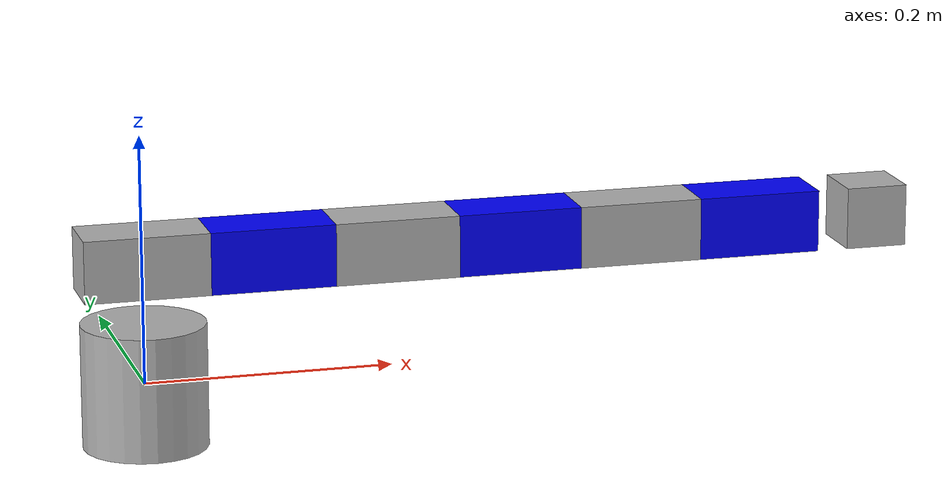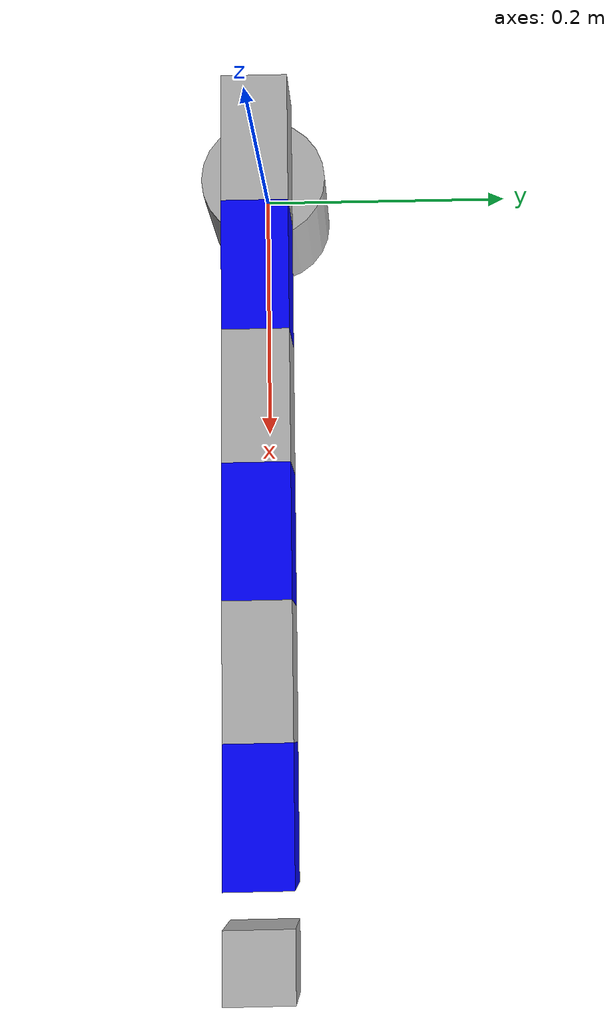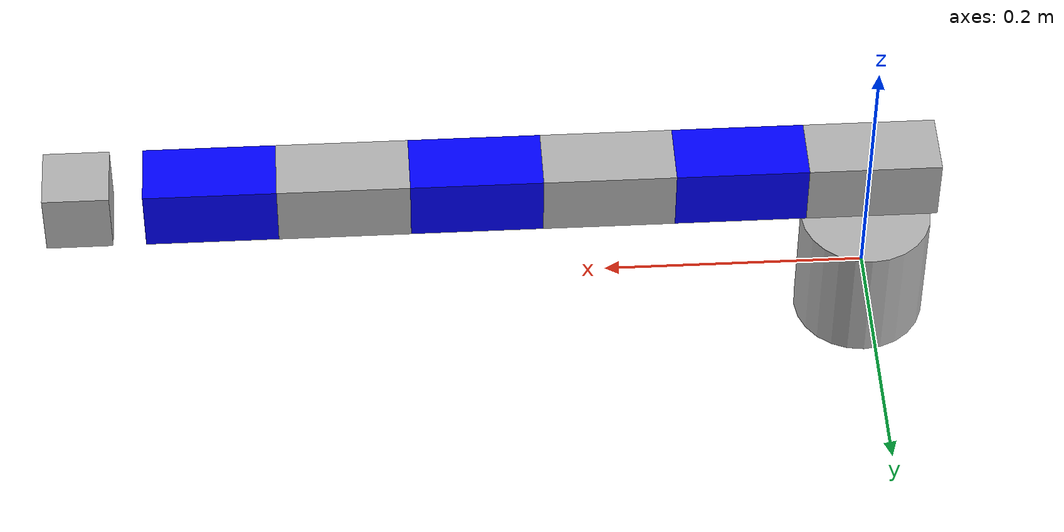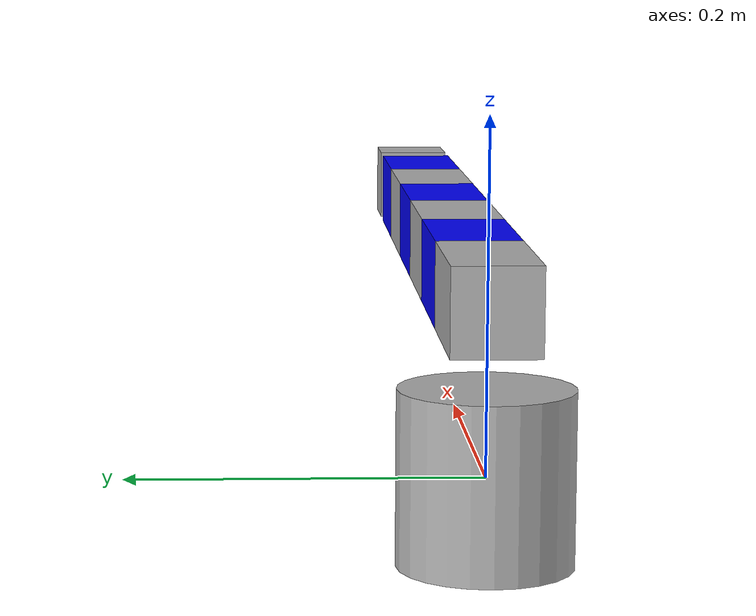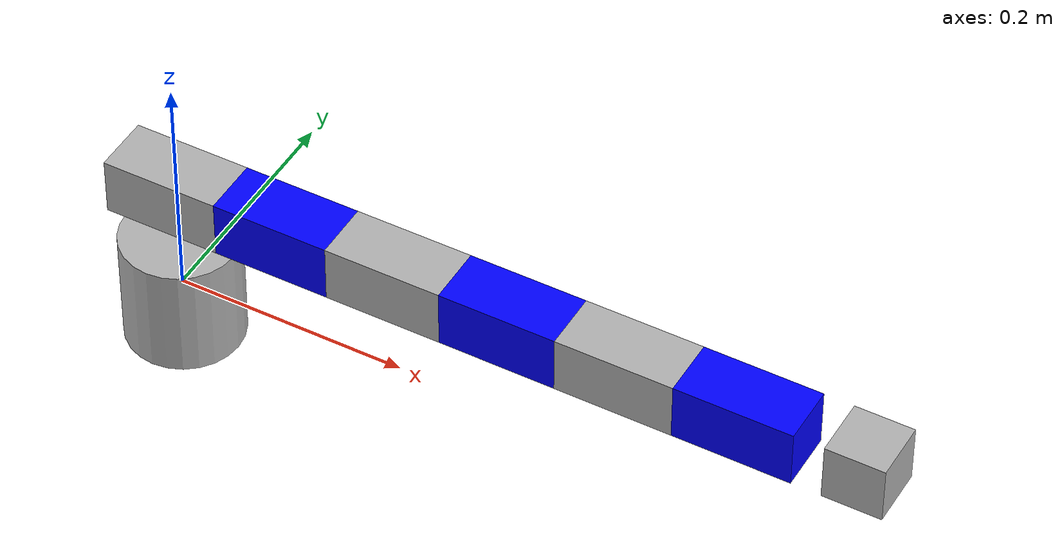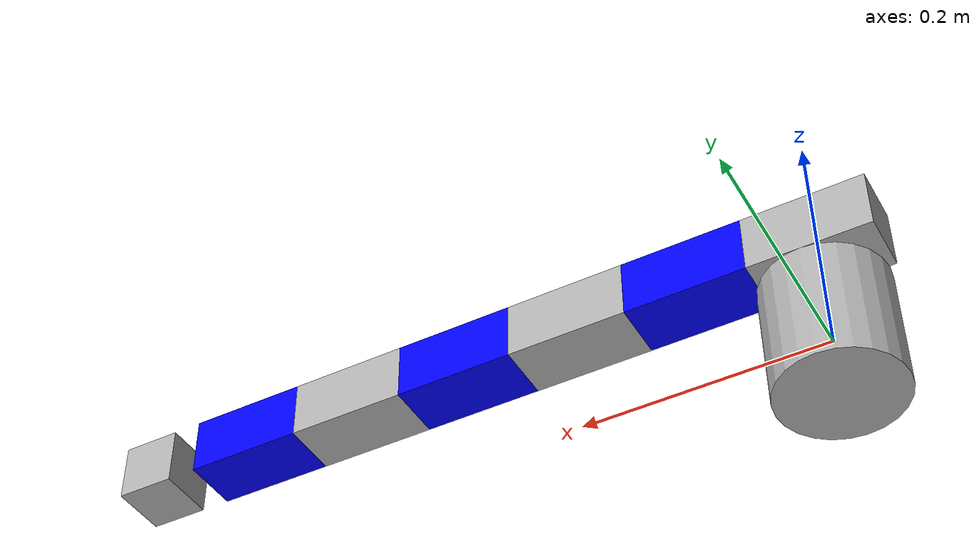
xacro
<?xml version="1.0"?>
<robot name="pegasus_arm" xmlns:xacro="http://www.ros.org/wiki/xacro">

  <!-- Materials -->
  <material name="silver">
    <color rgba="0.7 0.7 0.7 1.0"/>
  </material>
  <material name="blue">
    <color rgba="0.0 0.0 1.0 1.0"/>
  </material>

  <!-- Links -->
  <link name="world_link"/>
  <joint name="world_to_base" type="fixed">
    <parent link="world_link"/>
    <child link="base_link"/>
    <origin xyz="0 0 0" rpy="0 0 0"/>
  </joint>

  <link name="base_link">
    <visual>
      <geometry>
        <cylinder length="0.1" radius="0.05"/>
      </geometry>
      <material name="silver"/>
    </visual>
    <collision>
      <geometry>
        <cylinder length="0.1" radius="0.05"/>
      </geometry>
    </collision>
    <inertial>
      <origin xyz="0 0 0" rpy="0 0 0"/>
      <mass value="1.0"/>
      <inertia ixx="0.01" ixy="0.0" ixz="0.0" iyy="0.01" iyz="0.0" izz="0.01"/>
    </inertial>
  </link>

  <link name="link1">
    <visual>
      <geometry>
        <box size="0.1 0.05 0.05"/>
      </geometry>
      <material name="silver"/>
    </visual>
    <collision>
      <geometry>
        <box size="0.1 0.05 0.05"/>
      </geometry>
    </collision>
    <inertial>
      <origin xyz="0 0 0" rpy="0 0 0"/>
      <mass value="0.5"/>
      <inertia ixx="0.005" ixy="0.0" ixz="0.0" iyy="0.005" iyz="0.0" izz="0.005"/>
    </inertial>
  </link>

  <link name="link2">
    <visual>
      <geometry>
        <box size="0.1 0.05 0.05"/>
      </geometry>
      <material name="blue"/>
    </visual>
    <collision>
      <geometry>
        <box size="0.1 0.05 0.05"/>
      </geometry>
    </collision>
    <inertial>
      <origin xyz="0 0 0" rpy="0 0 0"/>
      <mass value="0.5"/>
      <inertia ixx="0.005" ixy="0.0" ixz="0.0" iyy="0.005" iyz="0.0" izz="0.005"/>
    </inertial>
  </link>

  <link name="link3">
    <visual>
      <geometry>
        <box size="0.1 0.05 0.05"/>
      </geometry>
      <material name="silver"/>
    </visual>
    <collision>
      <geometry>
        <box size="0.1 0.05 0.05"/>
      </geometry>
    </collision>
    <inertial>
      <origin xyz="0 0 0" rpy="0 0 0"/>
      <mass value="0.5"/>
      <inertia ixx="0.005" ixy="0.0" ixz="0.0" iyy="0.005" iyz="0.0" izz="0.005"/>
    </inertial>
  </link>

  <link name="link4">
    <visual>
      <geometry>
        <box size="0.1 0.05 0.05"/>
      </geometry>
      <material name="blue"/>
    </visual>
    <collision>
      <geometry>
        <box size="0.1 0.05 0.05"/>
      </geometry>
    </collision>
    <inertial>
      <origin xyz="0 0 0" rpy="0 0 0"/>
      <mass value="0.5"/>
      <inertia ixx="0.005" ixy="0.0" ixz="0.0" iyy="0.005" iyz="0.0" izz="0.005"/>
    </inertial>
  </link>

  <link name="link5">
    <visual>
      <geometry>
        <box size="0.1 0.05 0.05"/>
      </geometry>
      <material name="silver"/>
    </visual>
    <collision>
      <geometry>
        <box size="0.1 0.05 0.05"/>
      </geometry>
    </collision>
    <inertial>
      <origin xyz="0 0 0" rpy="0 0 0"/>
      <mass value="0.5"/>
      <inertia ixx="0.005" ixy="0.0" ixz="0.0" iyy="0.005" iyz="0.0" izz="0.005"/>
    </inertial>
  </link>

  <link name="link6">
    <visual>
      <geometry>
        <box size="0.1 0.05 0.05"/>
      </geometry>
      <material name="blue"/>
    </visual>
    <collision>
      <geometry>
        <box size="0.1 0.05 0.05"/>
      </geometry>
    </collision>
    <inertial>
      <origin xyz="0 0 0" rpy="0 0 0"/>
      <mass value="0.5"/>
      <inertia ixx="0.005" ixy="0.0" ixz="0.0" iyy="0.005" iyz="0.0" izz="0.005"/>
    </inertial>
  </link>

  <link name="end_effector_link">
    <visual>
      <geometry>
        <box size="0.05 0.05 0.05"/>
      </geometry>
      <material name="silver"/>
    </visual>
    <collision>
      <geometry>
        <box size="0.05 0.05 0.05"/>
      </geometry>
    </collision>
    <inertial>
      <origin xyz="0 0 0" rpy="0 0 0"/>
      <mass value="0.2"/>
      <inertia ixx="0.002" ixy="0.0" ixz="0.0" iyy="0.002" iyz="0.0" izz="0.002"/>
    </inertial>
  </link>

  <!-- Joints -->
  <joint name="joint_base_link_link1" type="revolute">
    <parent link="base_link"/>
    <child link="link1"/>
    <origin xyz="0 0 0.1" rpy="0 0 0"/>
    <axis xyz="0 0 1"/>
    <limit lower="-1.57" upper="1.57" effort="10" velocity="1"/>
    <dynamics damping="0.1" friction="0"/>
  </joint>

  <joint name="joint_link1_link2" type="revolute">
    <parent link="link1"/>
    <child link="link2"/>
    <origin xyz="0.1 0 0" rpy="0 0 0"/>
    <axis xyz="0 0 1"/>
    <limit lower="-1.57" upper="1.57" effort="10" velocity="1"/>
    <dynamics damping="0.1" friction="0"/>
  </joint>

  <joint name="joint_link2_link3" type="revolute">
    <parent link="link2"/>
    <child link="link3"/>
    <origin xyz="0.1 0 0" rpy="0 0 0"/>
    <axis xyz="0 0 1"/>
    <limit lower="-1.57" upper="1.57" effort="10" velocity="1"/>
    <dynamics damping="0.1" friction="0"/>
  </joint>

  <joint name="joint_link3_link4" type="revolute">
    <parent link="link3"/>
    <child link="link4"/>
    <origin xyz="0.1 0 0" rpy="0 0 0"/>
    <axis xyz="0 0 1"/>
    <limit lower="-1.57" upper="1.57" effort="10" velocity="1"/>
    <dynamics damping="0.1" friction="0"/>
  </joint>

  <joint name="joint_link4_link5" type="revolute">
    <parent link="link4"/>
    <child link="link5"/>
    <origin xyz="0.1 0 0" rpy="0 0 0"/>
    <axis xyz="0 0 1"/>
    <limit lower="-1.57" upper="1.57" effort="10" velocity="1"/>
    <dynamics damping="0.1" friction="0"/>
  </joint>

  <joint name="joint_link5_link6" type="revolute">
    <parent link="link5"/>
    <child link="link6"/>
    <origin xyz="0.1 0 0" rpy="0 0 0"/>
    <axis xyz="0 0 1"/>
    <limit lower="-1.57" upper="1.57" effort="10" velocity="1"/>
    <dynamics damping="0.1" friction="0"/>
  </joint>

  <joint name="joint_link6_end_effector" type="fixed">
    <parent link="link6"/>
    <child link="end_effector_link"/>
    <origin xyz="0.1 0 0" rpy="0 0 0"/>
  </joint>

  <!-- ROS2 Control Configuration -->
  <ros2_control name="PegasusArm" type="system">
    <hardware>
      <plugin>mock_components/GenericSystem</plugin>
      <param name="is_sim">true</param>
    </hardware>
    <joint name="joint_base_link_link1">
      <command_interface name="position">
        <param name="min">-1.57</param>
        <param name="max">1.57</param>
      </command_interface>
      <state_interface name="position"/>
      <state_interface name="velocity"/>
    </joint>
    <joint name="joint_link1_link2">
      <command_interface name="position">
        <param name="min">-1.57</param>
        <param name="max">1.57</param>
      </command_interface>
      <state_interface name="position"/>
      <state_interface name="velocity"/>
    </joint>
    <joint name="joint_link2_link3">
      <command_interface name="position">
        <param name="min">-1.57</param>
        <param name="max">1.57</param>
      </command_interface>
      <state_interface name="position"/>
      <state_interface name="velocity"/>
    </joint>
    <joint name="joint_link3_link4">
      <command_interface name="position">
        <param name="min">-1.57</param>
        <param name="max">1.57</param>
      </command_interface>
      <state_interface name="position"/>
      <state_interface name="velocity"/>
    </joint>
    <joint name="joint_link4_link5">
      <command_interface name="position">
        <param name="min">-1.57</param>
        <param name="max">1.57</param>
      </command_interface>
      <state_interface name="position"/>
      <state_interface name="velocity"/>
    </joint>
    <joint name="joint_link5_link6">
      <command_interface name="position">
        <param name="min">-1.57</param>
        <param name="max">1.57</param>
      </command_interface>
      <state_interface name="position"/>
      <state_interface name="velocity"/>
    </joint>
  </ros2_control>

  <!-- Gazebo (Optional, remove if not used) -->

</robot>
